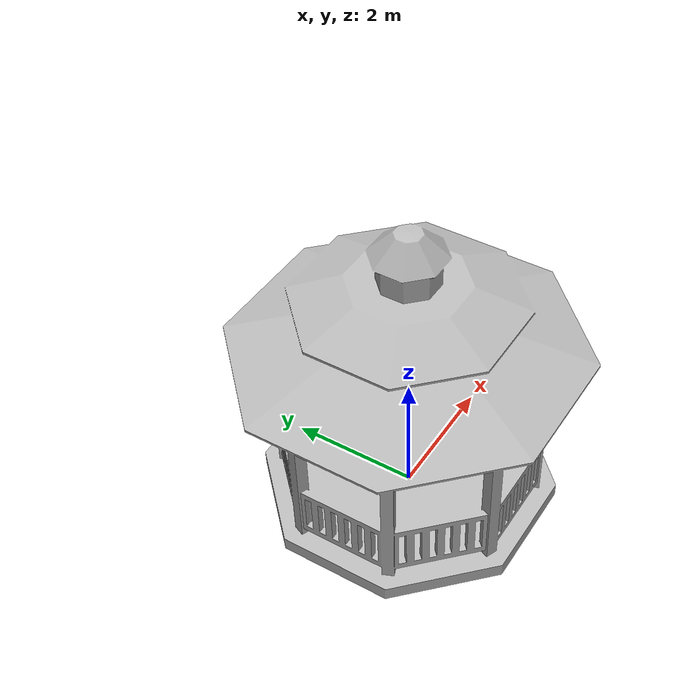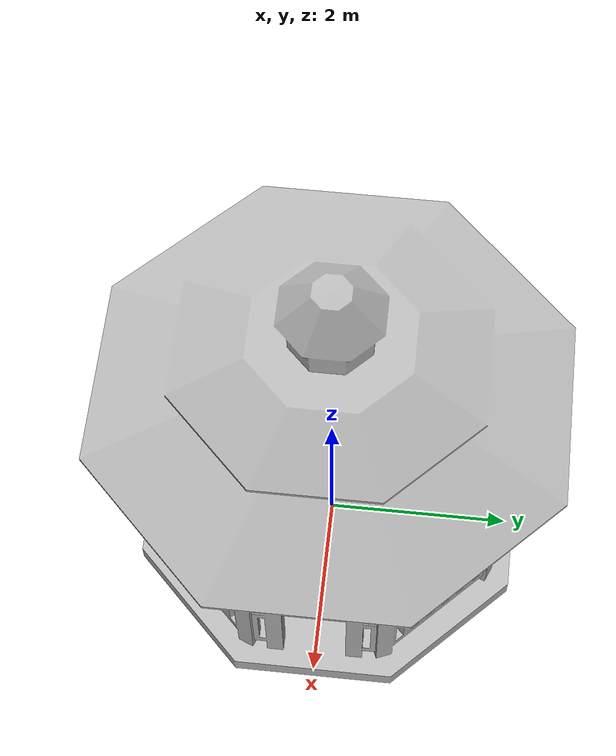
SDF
<?xml version="1.0" ?>
<sdf version="1.6">
  <model name="gazebo_scalable">
    <static>true</static>
    <link name="link">
      <collision name="collision">
        <geometry>
          <mesh>
            <scale>1.8 1.8 1.5</scale>
            <uri>model://gazebo/meshes/gazebo.dae</uri>
          </mesh>
        </geometry>
      </collision>
      <visual name="visual">
        <geometry>
          <mesh>
            <scale>1.8 1.8 1.5</scale>
            <uri>model://gazebo/meshes/gazebo.dae</uri>
          </mesh>
        </geometry>
      </visual>
    </link>
  </model>
</sdf>
